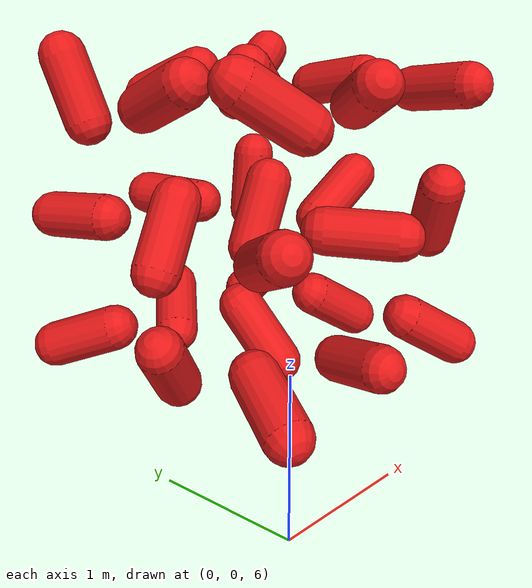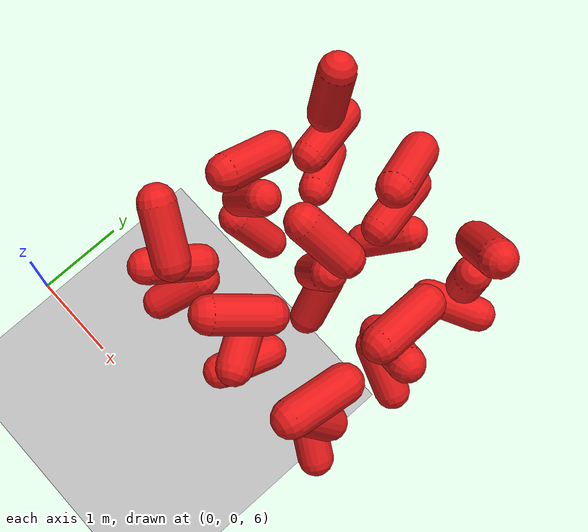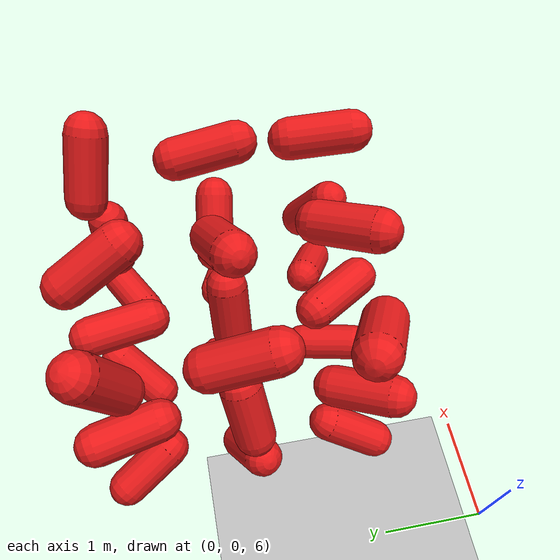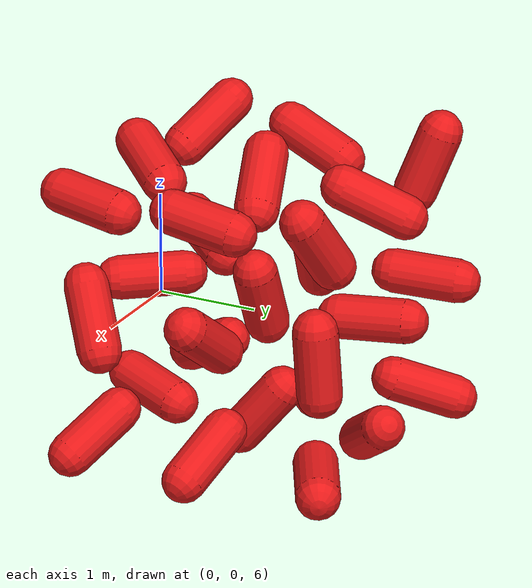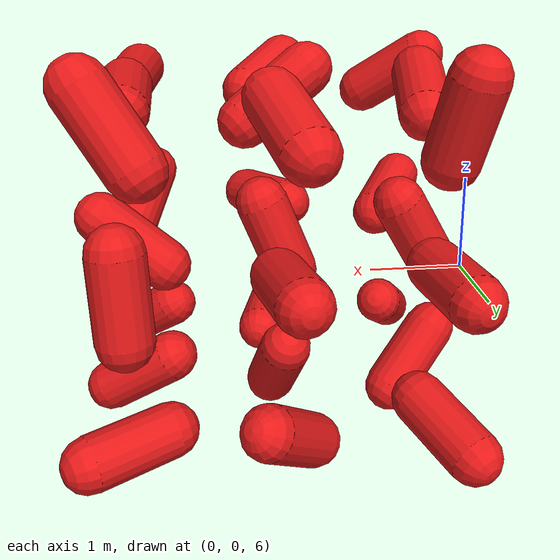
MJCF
<mujoco model="Humanoid and 100 objects">
    <compiler angle="degree"/>

    <option timestep="0.01" iterations="50" solver="PGS" jacobian="sparse" cone="elliptic" tolerance="1e-10"/>

    <size njmax="5000" nconmax="2000" nstack="1000000000"/>

    <default>
        <geom solimp=".9 .9 .01"/>

        <default class="object5">
			<geom type="capsule" material="geom" rgba=".9 .1 .1 1" size="0.200000 0.300000"/>
        </default>
    </default>

    <asset>
        <texture type="skybox" builtin="gradient" width="128" height="128" rgb1=".4 .6 .8" rgb2="0 0 0"/>
        <texture name="texgeom" type="cube" builtin="flat" mark="cross" width="128" height="128"
            rgb1="0.6 0.6 0.6" rgb2="0.6 0.6 0.6" markrgb="1 1 1"/>
        <texture name="texplane" type="2d" builtin="checker" rgb1=".4 .4 .4" rgb2=".6 .6 .6"
            width="512" height="512"/>
        <material name='geom' texture="texgeom" texuniform="true"/>
        <material name='MatPlane' reflectance='0.3' texture="texplane" texrepeat="1 1" texuniform="true"/>
    </asset>

    <visual>
        <quality shadowsize="4096" offsamples="8"/>
        <map znear="0.1" force="0.05"/>
    </visual>

    <statistic extent="4"/>

    <worldbody>
        <light directional="true" diffuse=".8 .8 .8" pos="0 0 10" dir="0 0 -10"/>

        <geom pos="0 0 0" type="plane" size="3 3 .5" rgba=".7 .7 .7 1" material="MatPlane"/>
		<body pos="1.100229 1.100590 6.100530" quat="0.208170 0.060591 0.514280 0.829765"> <freejoint/> <geom class="object5"/> </body>
		<body pos="1.100879 1.100405 7.200607" quat="-0.411953 0.008041 0.571486 -0.709672"> <freejoint/> <geom class="object5"/> </body>
		<body pos="1.100688 1.100248 8.300125" quat="-0.865414 0.154108 0.457076 0.135616"> <freejoint/> <geom class="object5"/> </body>
		<body pos="1.100090 2.200241 6.100635" quat="0.734555 0.333896 -0.156126 -0.569708"> <freejoint/> <geom class="object5"/> </body>
		<body pos="1.100153 2.200656 7.200035" quat="-0.215740 0.364244 0.892686 -0.154578"> <freejoint/> <geom class="object5"/> </body>
		<body pos="1.100249 2.200890 8.300214" quat="0.222269 -0.244303 0.793459 0.511210"> <freejoint/> <geom class="object5"/> </body>
		<body pos="1.100521 3.300817 6.100653" quat="0.611952 0.565664 -0.119597 0.539662"> <freejoint/> <geom class="object5"/> </body>
		<body pos="1.100109 3.300013 7.200704" quat="-0.622786 0.591008 0.427069 0.283653"> <freejoint/> <geom class="object5"/> </body>
		<body pos="1.100421 3.300953 8.300488" quat="0.599161 -0.043506 -0.179740 -0.778978"> <freejoint/> <geom class="object5"/> </body>
		<body pos="2.200406 1.100618 6.100600" quat="0.754678 0.557399 -0.308059 0.157693"> <freejoint/> <geom class="object5"/> </body>
		<body pos="2.200669 1.100074 7.200585" quat="-0.018206 -0.402358 0.600846 -0.690478"> <freejoint/> <geom class="object5"/> </body>
		<body pos="2.200402 1.100905 8.300151" quat="-0.284302 -0.104744 -0.810523 -0.501252"> <freejoint/> <geom class="object5"/> </body>
		<body pos="2.200980 2.200112 6.100544" quat="0.134599 0.149887 0.929082 -0.310198"> <freejoint/> <geom class="object5"/> </body>
		<body pos="2.200927 2.200417 7.200757" quat="0.783249 -0.109911 0.156610 -0.591535"> <freejoint/> <geom class="object5"/> </body>
		<body pos="2.200977 2.200919 8.300013" quat="0.184357 0.674816 0.584173 0.411555"> <freejoint/> <geom class="object5"/> </body>
		<body pos="2.200427 3.300714 6.100075" quat="0.484457 0.651953 -0.583263 -0.007891"> <freejoint/> <geom class="object5"/> </body>
		<body pos="2.200399 3.300001 7.200744" quat="-0.225975 0.336264 -0.607125 -0.683565"> <freejoint/> <geom class="object5"/> </body>
		<body pos="2.200052 3.300530 8.300146" quat="-0.228874 0.580612 -0.608237 -0.490464"> <freejoint/> <geom class="object5"/> </body>
		<body pos="3.300213 1.100247 6.100568" quat="0.659351 0.107722 -0.483250 -0.565792"> <freejoint/> <geom class="object5"/> </body>
		<body pos="3.300588 1.100537 7.200140" quat="-0.698608 -0.025336 0.280156 -0.657888"> <freejoint/> <geom class="object5"/> </body>
		<body pos="3.300952 1.100280 8.300698" quat="-0.548967 0.662751 0.342240 0.377184"> <freejoint/> <geom class="object5"/> </body>
		<body pos="3.300411 2.200272 6.100280" quat="0.523973 -0.461731 -0.179912 0.692740"> <freejoint/> <geom class="object5"/> </body>
		<body pos="3.300985 2.200370 7.200008" quat="-0.686319 0.216463 -0.383746 0.578662"> <freejoint/> <geom class="object5"/> </body>
		<body pos="3.300195 2.200693 8.300712" quat="0.283119 0.229479 0.603099 -0.709545"> <freejoint/> <geom class="object5"/> </body>
		<body pos="3.300029 3.300019 6.100421" quat="0.425128 0.673035 -0.080536 -0.599837"> <freejoint/> <geom class="object5"/> </body>
		<body pos="3.300944 3.300886 7.200461" quat="-0.030476 0.369654 0.928517 0.016846"> <freejoint/> <geom class="object5"/> </body>
		<body pos="3.300748 3.300193 8.300737" quat="0.094721 -0.950104 0.079368 0.286410"> <freejoint/> <geom class="object5"/> </body>

    </worldbody>
</mujoco>
